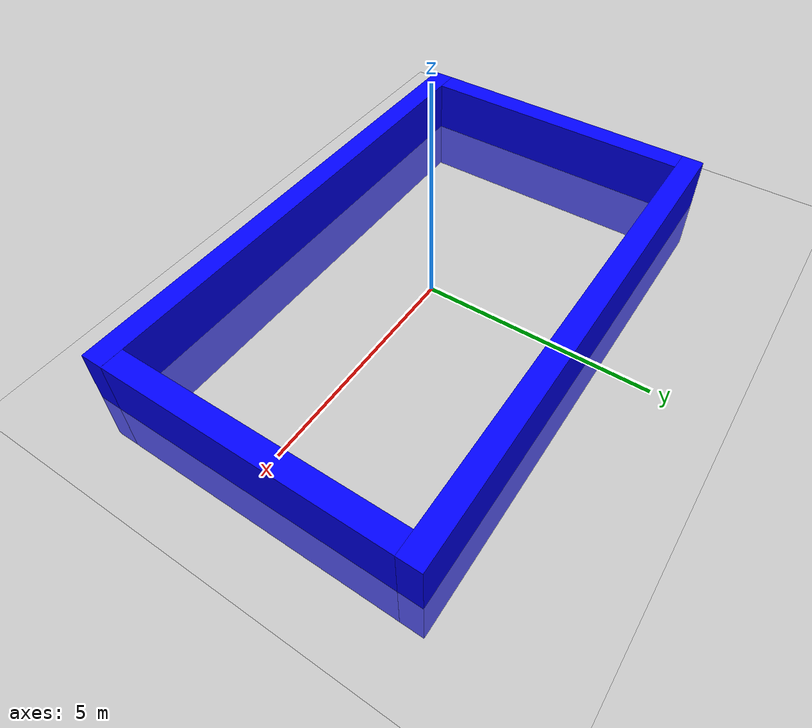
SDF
<?xml version="1.0" ?>
<sdf version="1.8">
    <world name="ecore2">
        <physics name="1ms" type="ignored">
            <max_step_size>0.001</max_step_size>
            <real_time_factor>1.0</real_time_factor>
        </physics>
        <plugin
			filename="libignition-gazebo-imu-system.so"
			name="ignition::gazebo::systems::Imu">
		</plugin>
		<plugin
			filename="libignition-gazebo-contact-system.so"
			name="ignition::gazebo::systems::Contact">
		</plugin>
        <plugin
            filename="libignition-gazebo-physics-system.so"
            name="ignition::gazebo::systems::Physics">
        </plugin>
        <plugin
            filename="libignition-gazebo-user-commands-system.so"
            name="ignition::gazebo::systems::UserCommands">
        </plugin>
        <plugin
            filename="libignition-gazebo-scene-broadcaster-system.so"
            name="ignition::gazebo::systems::SceneBroadcaster">
        </plugin>
        <plugin
		  	filename="libignition-gazebo-sensors-system.so"
		  	name="ignition::gazebo::systems::Sensors">
		  	<render_engine>ogre2</render_engine>
		</plugin>

        <light type="directional" name="sun">
            <cast_shadows>true</cast_shadows>
            <pose>0 0 10 0 0 0</pose>
            <diffuse>0.8 0.8 0.8 1</diffuse>
            <specular>0.2 0.2 0.2 1</specular>
            <attenuation>
                <range>1000</range>
                <constant>0.9</constant>
                <linear>0.01</linear>
                <quadratic>0.001</quadratic>
            </attenuation>
            <direction>-0.5 0.1 -0.9</direction>
        </light>

        <model name="ground_plane">
            <static>true</static>
            <link name="link">
                <collision name="collision">
                <geometry>
                    <plane>
                    <normal>0 0 1</normal>
                    </plane>
                </geometry>
                </collision>
                <visual name="visual">
                <geometry>
                    <plane>
                    <normal>0 0 1</normal>
                    <size>100 100</size>
                    </plane>
                </geometry>
                <material>
                    <ambient>0.8 0.8 0.8 1</ambient>
                    <diffuse>0.8 0.8 0.8 1</diffuse>
                    <specular>0.8 0.8 0.8 1</specular>
                </material>
                </visual>
            </link>
        </model>

		<model name='wall1'>
			<static>true</static>
			<pose>5.584 0 0 0 0 0</pose><!--pose relative to the world-->
			<link name='box'>
				<pose/>
				<visual name='visual'>
				    <geometry>
				        <box>
				            <size>0.5 6.359525 2.447925</size>
				        </box>
				    </geometry>
				    <!--let's add color to our link-->
				    <material>
				        <ambient>0.0 0.0 1.0 1</ambient>
				        <diffuse>0.0 0.0 1.0 1</diffuse>
				        <specular>0.0 0.0 1.0 1</specular>
				    </material>
				</visual>
				<collision name='collision'>
				    <geometry>
				        <box>
				            <size>0.5 6.359525 2.447925</size>
				        </box>
				    </geometry>
				</collision>
				<sensor name='sensor_contact' type='contact'>
					<contact>
						<collision>collision</collision>
					</contact>
				</sensor>
			</link>
			<plugin filename="libignition-gazebo-touchplugin-system.so"
					name="ignition::gazebo::systems::TouchPlugin">
				<target>vehicle_blue</target>
				<namespace>wall</namespace>
				<time>0.001</time>
				<enabled>true</enabled>
			</plugin>
			<plugin filename="libignition-gazebo-triggered-publisher-system.so"
					name="ignition::gazebo::systems::TriggeredPublisher">
				<input type="ignition.msgs.Boolean" topic="/wall/touched">
					<match>data: true</match>
				</input>
				<output type="ignition.msgs.Twist" topic="/cmd_vel">
					linear: {x: 0.0}, angular: {z: 0.0}
				</output>
			</plugin>
		</model>

				<model name='wall2'>
			<static>true</static>
			<pose>0 -3.4297625 0 0 0 1.5707</pose><!--pose relative to the world-->
			<link name='box'>
				<pose/>
				<visual name='visual'>
				    <geometry>
				        <box>
				            <size>0.5 11.668 2.447925</size>
				        </box>
				    </geometry>
				    <!--let's add color to our link-->
				    <material>
				        <ambient>0.0 0.0 1.0 1</ambient>
				        <diffuse>0.0 0.0 1.0 1</diffuse>
				        <specular>0.0 0.0 1.0 1</specular>
				    </material>
				</visual>
				<collision name='collision'>
				    <geometry>
				        <box>
				            <size>0.5 11.668 2.447925</size>
				        </box>
				    </geometry>
				</collision>
				<sensor name='sensor_contact' type='contact'>
					<contact>
						<collision>collision</collision>
					</contact>
				</sensor>
			</link>
			<plugin filename="libignition-gazebo-touchplugin-system.so"
					name="ignition::gazebo::systems::TouchPlugin">
				<target>vehicle_blue</target>
				<namespace>wall</namespace>
				<time>0.001</time>
				<enabled>true</enabled>
			</plugin>
			<plugin filename="libignition-gazebo-triggered-publisher-system.so"
					name="ignition::gazebo::systems::TriggeredPublisher">
				<input type="ignition.msgs.Boolean" topic="/wall/touched">
					<match>data: true</match>
				</input>
				<output type="ignition.msgs.Twist" topic="/cmd_vel">
					linear: {x: 0.0}, angular: {z: 0.0}
				</output>
			</plugin>
		</model>

				<model name='wall3'>
			<static>true</static>
			<pose>-5.584 0 0 0 0 0</pose><!--pose relative to the world-->
			<link name='box'>
				<pose/>
				<visual name='visual'>
				    <geometry>
				        <box>
				            <size>0.5 6.359525 2.447925</size>
				        </box>
				    </geometry>
				    <!--let's add color to our link-->
				    <material>
				        <ambient>0.0 0.0 1.0 1</ambient>
				        <diffuse>0.0 0.0 1.0 1</diffuse>
				        <specular>0.0 0.0 1.0 1</specular>
				    </material>
				</visual>
				<collision name='collision'>
				    <geometry>
				        <box>
				            <size>0.5 6.359525 2.447925</size>
				        </box>
				    </geometry>
				</collision>
				<sensor name='sensor_contact' type='contact'>
					<contact>
						<collision>collision</collision>
					</contact>
				</sensor>
			</link>
			<plugin filename="libignition-gazebo-touchplugin-system.so"
					name="ignition::gazebo::systems::TouchPlugin">
				<target>vehicle_blue</target>
				<namespace>wall</namespace>
				<time>0.001</time>
				<enabled>true</enabled>
			</plugin>
			<plugin filename="libignition-gazebo-triggered-publisher-system.so"
					name="ignition::gazebo::systems::TriggeredPublisher">
				<input type="ignition.msgs.Boolean" topic="/wall/touched">
					<match>data: true</match>
				</input>
				<output type="ignition.msgs.Twist" topic="/cmd_vel">
					linear: {x: 0.0}, angular: {z: 0.0}
				</output>
			</plugin>
		</model>

				<model name='wall4'>
			<static>true</static>
			<pose>0 3.4297625 0 0 0 1.5707</pose><!--pose relative to the world-->
			<link name='box'>
				<pose/>
				<visual name='visual'>
				    <geometry>
				        <box>
				            <size>0.5 11.668 2.447925</size>
				        </box>
				    </geometry>
				    <!--let's add color to our link-->
				    <material>
				        <ambient>0.0 0.0 1.0 1</ambient>
				        <diffuse>0.0 0.0 1.0 1</diffuse>
				        <specular>0.0 0.0 1.0 1</specular>
				    </material>
				</visual>
				<collision name='collision'>
				    <geometry>
				        <box>
				            <size>0.5 11.668 2.447925</size>
				        </box>
				    </geometry>
				</collision>
				<sensor name='sensor_contact' type='contact'>
					<contact>
						<collision>collision</collision>
					</contact>
				</sensor>
			</link>
			<plugin filename="libignition-gazebo-touchplugin-system.so"
					name="ignition::gazebo::systems::TouchPlugin">
				<target>vehicle_blue</target>
				<namespace>wall</namespace>
				<time>0.001</time>
				<enabled>true</enabled>
			</plugin>
			<plugin filename="libignition-gazebo-triggered-publisher-system.so"
					name="ignition::gazebo::systems::TriggeredPublisher">
				<input type="ignition.msgs.Boolean" topic="/wall/touched">
					<match>data: true</match>
				</input>
				<output type="ignition.msgs.Twist" topic="/cmd_vel">
					linear: {x: 0.0}, angular: {z: 0.0}
				</output>
			</plugin>
		</model>

    </world>
</sdf>
